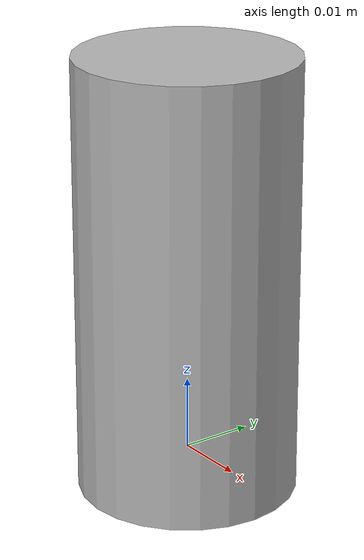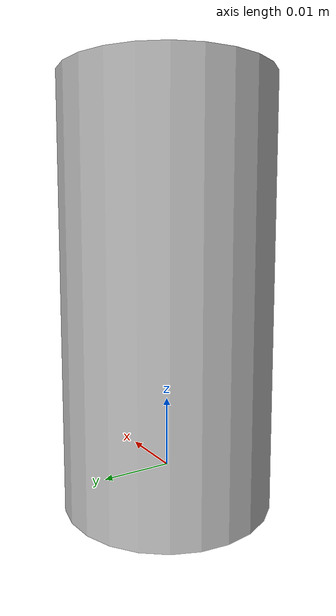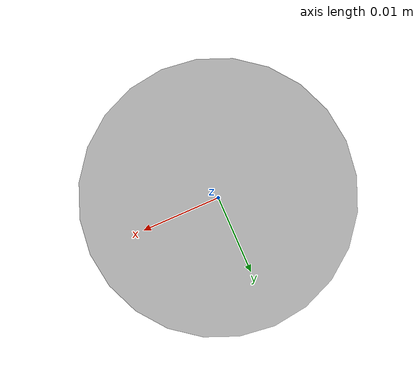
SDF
<?xml version='1.0'?>
<sdf version="1.4">
<model name="Cylinder">
  <pose>0 0 0.025 0 0 0</pose>
    <link name="link">
      <inertial>
        <mass>0.3</mass>
        <inertia>
          <ixx>0.0004</ixx>
          <ixy>0.0</ixy>
          <ixz>0.0</ixz>
          <iyy>0.0004</iyy>
          <iyz>0.0</iyz>
          <izz>0.0002</izz>
        </inertia>
      </inertial>
      <collision name="collision">
        <geometry>
          <cylinder>
            <radius>0.015</radius>
            <length>0.06</length>
          </cylinder>
        </geometry>
      </collision>
      <visual name="visual">
        <geometry>
          <cylinder>
            <radius>0.015</radius>
            <length>0.06</length>
          </cylinder>
        </geometry>
        <plugin name="color_plugin" filename="libDREAM_change_color.so"/>
      </visual>
    </link>
  </model>
</sdf>
